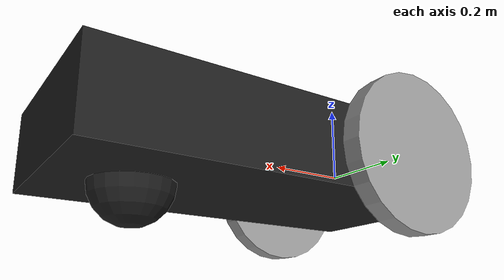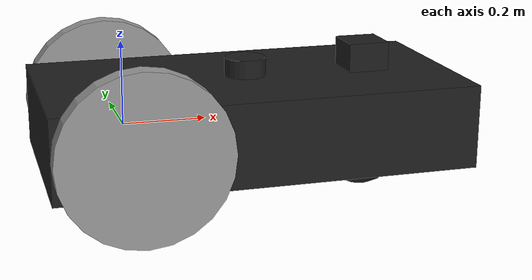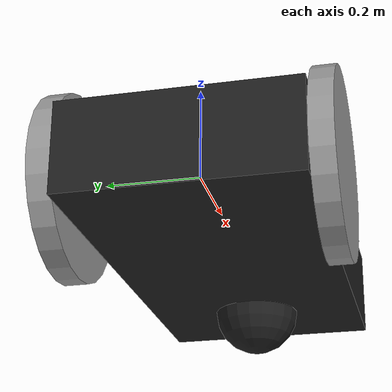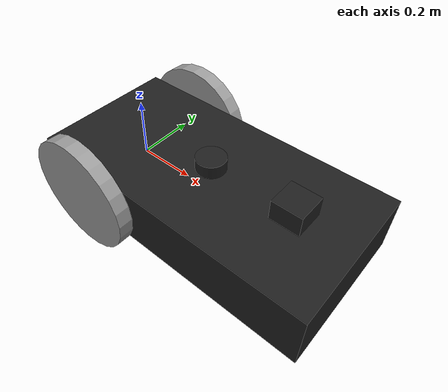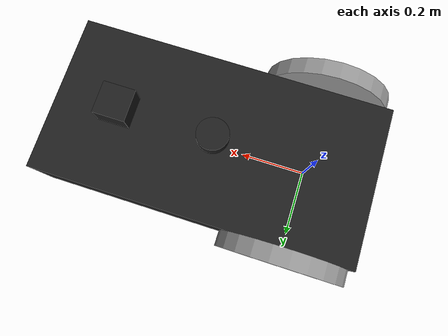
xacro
<?xml version="1.0"?>
<robot name="differential_robot" xmlns:xacro="http://www.ros.org/wiki/xacro">

  <!-- Incluindo as rodas-->
<xacro:include filename="$(find robot_description)/urdf/wheels.xacro"/>
  <!--Base Footprint-->
  <link name="base_link">
  </link>

  <!-- Link base do robô -->
  <link name="chassis">
    <visual>
      <geometry>
        <box size="1 0.5 0.2"/>
      </geometry>
      <origin xyz="0 0 0" rpy="0 0 0"/>
      <material name="black"/>
    </visual>
    <collision>
      <geometry>
        <box size="1 0.5 0.2"/>
      </geometry>
      <origin xyz="0 0 0" rpy="0 0 0"/>
    </collision>
    <inertial>
      <mass value="1"/>
      <origin xyz="0 0 0" rpy="0 0 0"/>
      <inertia ixx="1" ixy="0" ixz="0" iyy="1" iyz="0" izz="1"/>
    </inertial>
  </link>

  <joint name="base_joint" type="fixed">
    <origin xyz="0.3 0 0" rpy="0 0 0"  />
    <parent link="base_link" />
    <child link="chassis" />
  </joint>

  <!-- Adicionando a Caster Ball -->
  <link name="caster_wheel">
    <visual>
      <geometry>
        <sphere radius="0.1"/>
      </geometry>
      <origin xyz="0 0 -0.1" rpy="0 0 0"/>
      <material name="black"/>
    </visual>
    <collision>
      <geometry>
        <sphere radius="0.2"/>
      </geometry>
      <origin xyz="0 0 0" rpy="0 0 0"/>
    </collision>
    <inertial>
      <mass value="0.2"/>
      <origin xyz="0 0 0"/>
      <inertia ixx="0.01" ixy="0" ixz="0" iyy="0.01" iyz="0" izz="0.01"/>
    </inertial>
  </link>

  <!-- Definindo a junta da Caster Ball -->
  <joint name="caster_wheel_joint" type="fixed">
    <parent link="base_link"/>
    <child link="caster_wheel"/>
    <origin xyz="0.6 0 0" rpy="0 0 0"/>
  </joint>

  <!-- Definindo o atrito no Gazebo -->
  <gazebo reference="caster_wheel">
    <material>Gazebo/Black</material>
    <mu1 value="0.001"/>
    <mu2 value="0.001"/>
  </gazebo>

  <!-- Incluindo juntas rodas -->
  <joint name="left_wheel_joint" type="continuous">
    <parent link="base_link"/>
    <child link="left_wheel"/>
    <origin xyz="0 0.275 0" rpy="0 0 0"/>
    <axis xyz="0 1 0"/>
    <limit effort="100" velocity="10"/>
  </joint>

  <joint name="right_wheel_joint" type="continuous">
    <parent link="base_link"/>
    <child link="right_wheel"/>
    <origin xyz="0 -0.275 0" rpy="0 0 0"/>
    <axis xyz="0 1 0"/>
    <limit effort="100" velocity="10"/>
  </joint>

<!-- Link do IMU -->
    <link name="imu_link"/>

    <!-- Joint fixo conectando o IMU ao chassi -->
    <joint name="imu_joint" type="fixed">
      <origin xyz="0 0 0" rpy="0 0 0"/>
      <parent link="chassis"/>
      <child link="imu_link"/>
    </joint>

    <xacro:include filename="$(find robot_description)/urdf/sensors.xacro"/>
    <xacro:imu_sensor/>

<!-- Link Lidar -->
  <link name="lidar_link">
    <visual>
      <geometry>
        <cylinder radius="0.05" length="0.05"/>
      </geometry>
      <origin xyz="0 0 0" rpy="0 0 0"/>
      <material name="black"/>
    </visual>
    <collision>
      <geometry>
        <cylinder radius="0.05" length="0.05"/>
      </geometry>
      <origin xyz="0 0 0" rpy="0 0 0"/>
    </collision>
    <inertial>
      <mass value="0.1"/>
      <origin xyz="0 0 0"/>
      <inertia ixx="0.01" ixy="0" ixz="0" iyy="0.01" iyz="0" izz="0.01"/>
    </inertial>
  </link>

  <joint name="lidar_joint" type="fixed">
    <parent link="chassis"/>
    <child link="lidar_link"/>
    <origin xyz="0 0 0.12" rpy="0 0 0"/>
  </joint>

  <xacro:lidar_sensor/>

  <!-- Link da Câmera -->
  <link name="camera_link">
    <visual>
      <geometry>
        <box size="0.1 0.1 0.1"/>
      </geometry>
      <origin xyz="0 0 0" rpy="0 0 0"/>
      <material name="black"/>
    </visual>
    <collision>
      <geometry>
        <box size="0.1 0.1 0.1"/>
      </geometry>
      <origin xyz="0 0 0" rpy="0 0 0"/>
    </collision>
  </link>

  <joint name="camera_joint" type="fixed">
    <parent link="chassis"/>
    <child link="camera_link"/>
    <origin xyz="0.3 0 0.12" rpy="0 0 0"/>
  </joint>

  <xacro:camera_sensor/>

  <xacro:differential_controller/>

</robot>

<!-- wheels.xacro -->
<robot xmlns:xacro="http://www.ros.org/wiki/xacro">

  <!-- Definir a roda esquerda -->
  <link name="left_wheel">
    <visual>
      <geometry>
        <cylinder radius="0.2" length="0.05"/>
      </geometry>
      <origin xyz="0 0 0" rpy="1.5708 0 0"/> <!-- Rotaciona 90 graus em torno do eixo X -->
      <material name="gray"/>
    </visual>
    <collision>
      <geometry>
        <cylinder radius="0.2" length="0.05"/>
      </geometry>
      <origin xyz="0 0 0" rpy="1.5708 0 0"/> <!-- Rotaciona 90 graus em torno do eixo X -->
    </collision>
    <inertial>
      <mass value="0.5"/>
      <origin xyz="0 0 0"/>
      <inertia ixx="0.01" ixy="0" ixz="0" iyy="0.01" iyz="0" izz="0.01"/>
    </inertial>
  </link>

  <!-- Definir a roda direita -->
  <link name="right_wheel">
    <visual>
      <geometry>
        <cylinder radius="0.2" length="0.05"/>
      </geometry>
      <origin xyz="0 0 0" rpy="1.5708 0 0"/>
      <material name="gray"/>
    </visual>
    <collision>
      <geometry>
        <cylinder radius="0.2" length="0.05"/>
      </geometry>
      <origin xyz="0 0 0" rpy="1.5708 0 0"/>
    </collision>
    <inertial>
      <mass value="0.5"/>
      <origin xyz="0 0 0"/>
      <inertia ixx="0.01" ixy="0" ixz="0" iyy="0.01" iyz="0" izz="0.01"/>
    </inertial>
  </link>

</robot>
